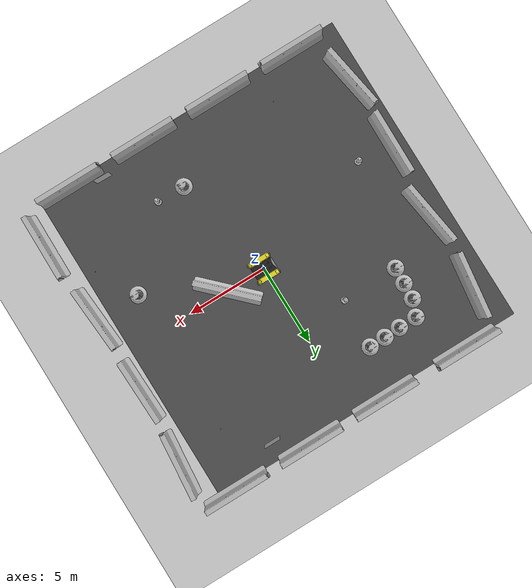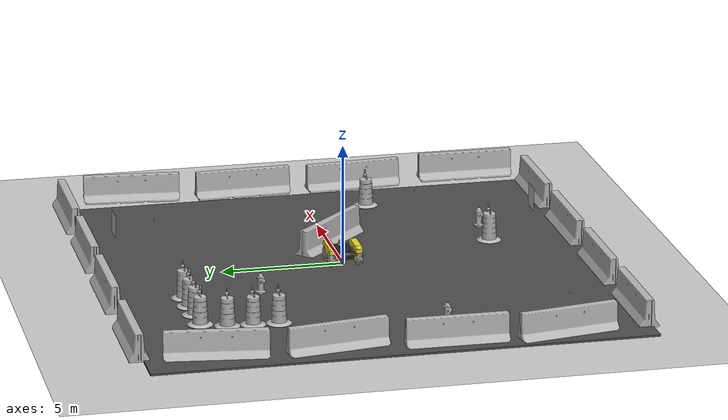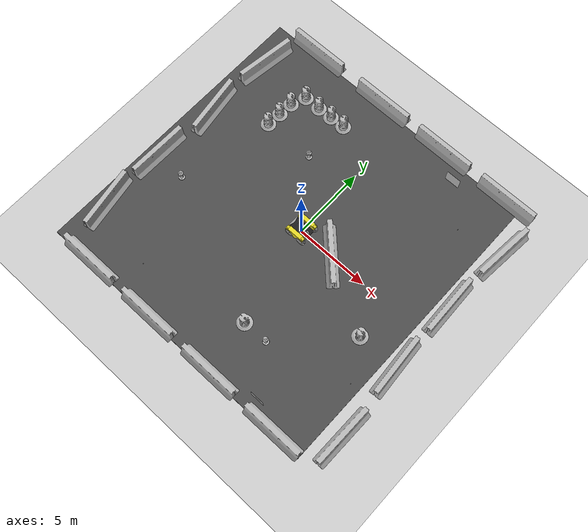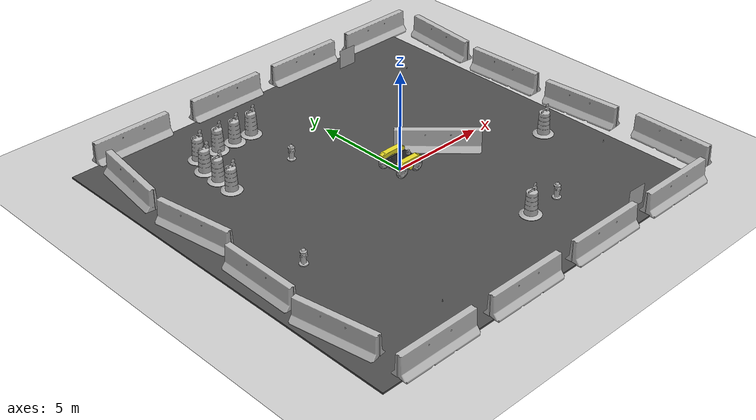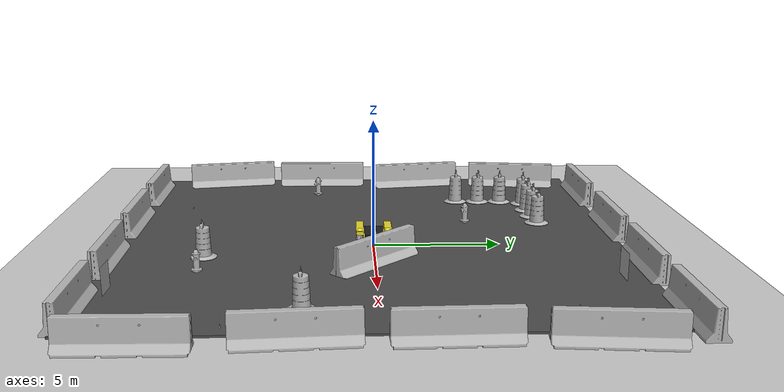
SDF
<sdf version="1.6">
 <world name="default">
  <light name="sun" type="directional">
   <pose>0 0 10 0 -0 0</pose>
   <diffuse>0.8 0.8 0.8 1</diffuse>
   <specular>0.2 0.2 0.2 1</specular>
   <attenuation>
    <range>1000</range>
    <constant>0.9</constant>
    <linear>0.01</linear>
    <quadratic>0.001</quadratic>
   </attenuation>
   <direction>-0.5 0.1 -0.9</direction>
  </light>
  <model name="ground_plane">
   <static>1</static>
   <link name="link">
    <collision name="collision">
     <geometry><plane><normal>0 0 1</normal><size>100 100</size></plane></geometry>
     <surface><friction><ode><mu>100</mu><mu2>50</mu2></ode></friction></surface>
    </collision>
    <visual name="visual">
     <cast_shadows>0</cast_shadows>
     <geometry><plane><normal>0 0 1</normal><size>100 100</size></plane></geometry>
     <material>
      <script><uri>file://media/materials/scripts/gazebo.material</uri><name>Gazebo/Grey</name></script>
     </material>
    </visual>
    <velocity_decay><linear>0</linear><angular>0</angular></velocity_decay>
   </link>
  </model>
  <physics name="default_physics" default="0" type="ode">
   <max_step_size>0.01</max_step_size>
   <real_time_factor>1</real_time_factor>
   <real_time_update_rate>100</real_time_update_rate>
  </physics>
  <scene><ambient>0.4 0.4 0.4 1</ambient><background>0.7 0.7 0.7 1</background><shadows>1</shadows></scene>
  <model name="jersey_barrier">
   <static>1</static>
   <link name="link">
    <visual name="visual">
     <geometry>
      <mesh><uri>model://jersey_barrier/meshes/jersey_barrier.dae</uri><scale>1 1 1</scale></mesh>
     </geometry>
    </visual>
    <collision name="upright">
     <pose>0 0 0.5715 0 -0 0</pose>
     <geometry><box><size>4.06542 0.3063 1.143</size></box></geometry>
    </collision>
    <collision name="base">
     <pose>0 0 0.032258 0 -0 0</pose>
     <geometry><box><size>4.06542 0.8107 0.064516</size></box></geometry>
    </collision>
    <collision name="base2">
     <pose>0 0 0.1 0 -0 0</pose>
     <geometry><box><size>4.06542 0.65 0.1</size></box></geometry>
    </collision>
    <collision name="base3">
     <pose>0 0 0.2 0 -0 0</pose>
     <geometry><box><size>4.06542 0.5 0.1</size></box></geometry>
    </collision>
    <collision name="left-angle">
     <pose>0 -0.224 0.2401 0.9 -0 0</pose>
     <geometry><box><size>4.06542 0.5 0.064516</size></box></geometry>
    </collision>
    <collision name="right-angle">
     <pose>0 0.224 0.2401 -0.9 0 0</pose>
     <geometry><box><size>4.06542 0.5 0.064516</size></box></geometry>
    </collision>
    <velocity_decay><linear>0</linear><angular>0</angular></velocity_decay>
   </link>
   <pose>-8 -10 0 0 -0 0</pose>
  </model>
  <model name="jersey_barrier_0">
   <static>1</static>
   <link name="link">
    <visual name="visual">
     <geometry>
      <mesh><uri>model://jersey_barrier/meshes/jersey_barrier.dae</uri><scale>1 1 1</scale></mesh>
     </geometry>
    </visual>
    <collision name="upright">
     <pose>0 0 0.5715 0 -0 0</pose>
     <geometry><box><size>4.06542 0.3063 1.143</size></box></geometry>
    </collision>
    <collision name="base">
     <pose>0 0 0.032258 0 -0 0</pose>
     <geometry><box><size>4.06542 0.8107 0.064516</size></box></geometry>
    </collision>
    <collision name="base2">
     <pose>0 0 0.1 0 -0 0</pose>
     <geometry><box><size>4.06542 0.65 0.1</size></box></geometry>
    </collision>
    <collision name="base3">
     <pose>0 0 0.2 0 -0 0</pose>
     <geometry><box><size>4.06542 0.5 0.1</size></box></geometry>
    </collision>
    <collision name="left-angle">
     <pose>0 -0.224 0.2401 0.9 -0 0</pose>
     <geometry><box><size>4.06542 0.5 0.064516</size></box></geometry>
    </collision>
    <collision name="right-angle">
     <pose>0 0.224 0.2401 -0.9 0 0</pose>
     <geometry><box><size>4.06542 0.5 0.064516</size></box></geometry>
    </collision>
    <velocity_decay><linear>0</linear><angular>0</angular></velocity_decay>
   </link>
   <pose>-3 -10 0 0 -0 0</pose>
  </model>
  <model name="jersey_barrier_1">
   <static>1</static>
   <link name="link">
    <visual name="visual">
     <geometry>
      <mesh><uri>model://jersey_barrier/meshes/jersey_barrier.dae</uri><scale>1 1 1</scale></mesh>
     </geometry>
    </visual>
    <collision name="upright">
     <pose>0 0 0.5715 0 -0 0</pose>
     <geometry><box><size>4.06542 0.3063 1.143</size></box></geometry>
    </collision>
    <collision name="base">
     <pose>0 0 0.032258 0 -0 0</pose>
     <geometry><box><size>4.06542 0.8107 0.064516</size></box></geometry>
    </collision>
    <collision name="base2">
     <pose>0 0 0.1 0 -0 0</pose>
     <geometry><box><size>4.06542 0.65 0.1</size></box></geometry>
    </collision>
    <collision name="base3">
     <pose>0 0 0.2 0 -0 0</pose>
     <geometry><box><size>4.06542 0.5 0.1</size></box></geometry>
    </collision>
    <collision name="left-angle">
     <pose>0 -0.224 0.2401 0.9 -0 0</pose>
     <geometry><box><size>4.06542 0.5 0.064516</size></box></geometry>
    </collision>
    <collision name="right-angle">
     <pose>0 0.224 0.2401 -0.9 0 0</pose>
     <geometry><box><size>4.06542 0.5 0.064516</size></box></geometry>
    </collision>
    <velocity_decay><linear>0</linear><angular>0</angular></velocity_decay>
   </link>
   <pose>2 -10 0 0 -0 0</pose>
  </model>
  <model name="jersey_barrier_2">
   <static>1</static>
   <link name="link">
    <visual name="visual">
     <geometry>
      <mesh><uri>model://jersey_barrier/meshes/jersey_barrier.dae</uri><scale>1 1 1</scale></mesh>
     </geometry>
    </visual>
    <collision name="upright">
     <pose>0 0 0.5715 0 -0 0</pose>
     <geometry><box><size>4.06542 0.3063 1.143</size></box></geometry>
    </collision>
    <collision name="base">
     <pose>0 0 0.032258 0 -0 0</pose>
     <geometry><box><size>4.06542 0.8107 0.064516</size></box></geometry>
    </collision>
    <collision name="base2">
     <pose>0 0 0.1 0 -0 0</pose>
     <geometry><box><size>4.06542 0.65 0.1</size></box></geometry>
    </collision>
    <collision name="base3">
     <pose>0 0 0.2 0 -0 0</pose>
     <geometry><box><size>4.06542 0.5 0.1</size></box></geometry>
    </collision>
    <collision name="left-angle">
     <pose>0 -0.224 0.2401 0.9 -0 0</pose>
     <geometry><box><size>4.06542 0.5 0.064516</size></box></geometry>
    </collision>
    <collision name="right-angle">
     <pose>0 0.224 0.2401 -0.9 0 0</pose>
     <geometry><box><size>4.06542 0.5 0.064516</size></box></geometry>
    </collision>
    <velocity_decay><linear>0</linear><angular>0</angular></velocity_decay>
   </link>
   <pose>7 -10 0 0 -0 0</pose>
  </model>
  <model name="jersey_barrier_3">
   <static>1</static>
   <link name="link">
    <visual name="visual">
     <geometry>
      <mesh><uri>model://jersey_barrier/meshes/jersey_barrier.dae</uri><scale>1 1 1</scale></mesh>
     </geometry>
    </visual>
    <collision name="upright">
     <pose>0 0 0.5715 0 -0 0</pose>
     <geometry><box><size>4.06542 0.3063 1.143</size></box></geometry>
    </collision>
    <collision name="base">
     <pose>0 0 0.032258 0 -0 0</pose>
     <geometry><box><size>4.06542 0.8107 0.064516</size></box></geometry>
    </collision>
    <collision name="base2">
     <pose>0 0 0.1 0 -0 0</pose>
     <geometry><box><size>4.06542 0.65 0.1</size></box></geometry>
    </collision>
    <collision name="base3">
     <pose>0 0 0.2 0 -0 0</pose>
     <geometry><box><size>4.06542 0.5 0.1</size></box></geometry>
    </collision>
    <collision name="left-angle">
     <pose>0 -0.224 0.2401 0.9 -0 0</pose>
     <geometry><box><size>4.06542 0.5 0.064516</size></box></geometry>
    </collision>
    <collision name="right-angle">
     <pose>0 0.224 0.2401 -0.9 0 0</pose>
     <geometry><box><size>4.06542 0.5 0.064516</size></box></geometry>
    </collision>
    <velocity_decay><linear>0</linear><angular>0</angular></velocity_decay>
   </link>
   <pose>-7.50675 10 0 0 -0 0</pose>
  </model>
  <model name="jersey_barrier_4">
   <static>1</static>
   <link name="link">
    <visual name="visual">
     <geometry>
      <mesh><uri>model://jersey_barrier/meshes/jersey_barrier.dae</uri><scale>1 1 1</scale></mesh>
     </geometry>
    </visual>
    <collision name="upright">
     <pose>0 0 0.5715 0 -0 0</pose>
     <geometry><box><size>4.06542 0.3063 1.143</size></box></geometry>
    </collision>
    <collision name="base">
     <pose>0 0 0.032258 0 -0 0</pose>
     <geometry><box><size>4.06542 0.8107 0.064516</size></box></geometry>
    </collision>
    <collision name="base2">
     <pose>0 0 0.1 0 -0 0</pose>
     <geometry><box><size>4.06542 0.65 0.1</size></box></geometry>
    </collision>
    <collision name="base3">
     <pose>0 0 0.2 0 -0 0</pose>
     <geometry><box><size>4.06542 0.5 0.1</size></box></geometry>
    </collision>
    <collision name="left-angle">
     <pose>0 -0.224 0.2401 0.9 -0 0</pose>
     <geometry><box><size>4.06542 0.5 0.064516</size></box></geometry>
    </collision>
    <collision name="right-angle">
     <pose>0 0.224 0.2401 -0.9 0 0</pose>
     <geometry><box><size>4.06542 0.5 0.064516</size></box></geometry>
    </collision>
    <velocity_decay><linear>0</linear><angular>0</angular></velocity_decay>
   </link>
   <pose>-2 10 0 0 -0 0</pose>
  </model>
  <model name="jersey_barrier_5">
   <static>1</static>
   <link name="link">
    <visual name="visual">
     <geometry>
      <mesh><uri>model://jersey_barrier/meshes/jersey_barrier.dae</uri><scale>1 1 1</scale></mesh>
     </geometry>
    </visual>
    <collision name="upright">
     <pose>0 0 0.5715 0 -0 0</pose>
     <geometry><box><size>4.06542 0.3063 1.143</size></box></geometry>
    </collision>
    <collision name="base">
     <pose>0 0 0.032258 0 -0 0</pose>
     <geometry><box><size>4.06542 0.8107 0.064516</size></box></geometry>
    </collision>
    <collision name="base2">
     <pose>0 0 0.1 0 -0 0</pose>
     <geometry><box><size>4.06542 0.65 0.1</size></box></geometry>
    </collision>
    <collision name="base3">
     <pose>0 0 0.2 0 -0 0</pose>
     <geometry><box><size>4.06542 0.5 0.1</size></box></geometry>
    </collision>
    <collision name="left-angle">
     <pose>0 -0.224 0.2401 0.9 -0 0</pose>
     <geometry><box><size>4.06542 0.5 0.064516</size></box></geometry>
    </collision>
    <collision name="right-angle">
     <pose>0 0.224 0.2401 -0.9 0 0</pose>
     <geometry><box><size>4.06542 0.5 0.064516</size></box></geometry>
    </collision>
    <velocity_decay><linear>0</linear><angular>0</angular></velocity_decay>
   </link>
   <pose>3 10 0 0 -0 0</pose>
  </model>
  <model name="jersey_barrier_6">
   <static>1</static>
   <link name="link">
    <visual name="visual">
     <geometry>
      <mesh><uri>model://jersey_barrier/meshes/jersey_barrier.dae</uri><scale>1 1 1</scale></mesh>
     </geometry>
    </visual>
    <collision name="upright">
     <pose>0 0 0.5715 0 -0 0</pose>
     <geometry><box><size>4.06542 0.3063 1.143</size></box></geometry>
    </collision>
    <collision name="base">
     <pose>0 0 0.032258 0 -0 0</pose>
     <geometry><box><size>4.06542 0.8107 0.064516</size></box></geometry>
    </collision>
    <collision name="base2">
     <pose>0 0 0.1 0 -0 0</pose>
     <geometry><box><size>4.06542 0.65 0.1</size></box></geometry>
    </collision>
    <collision name="base3">
     <pose>0 0 0.2 0 -0 0</pose>
     <geometry><box><size>4.06542 0.5 0.1</size></box></geometry>
    </collision>
    <collision name="left-angle">
     <pose>0 -0.224 0.2401 0.9 -0 0</pose>
     <geometry><box><size>4.06542 0.5 0.064516</size></box></geometry>
    </collision>
    <collision name="right-angle">
     <pose>0 0.224 0.2401 -0.9 0 0</pose>
     <geometry><box><size>4.06542 0.5 0.064516</size></box></geometry>
    </collision>
    <velocity_decay><linear>0</linear><angular>0</angular></velocity_decay>
   </link>
   <pose>8 10 0 0 -0 0</pose>
  </model>
  <model name="jersey_barrier_7">
   <static>1</static>
   <link name="link">
    <visual name="visual">
     <geometry>
      <mesh><uri>model://jersey_barrier/meshes/jersey_barrier.dae</uri><scale>1 1 1</scale></mesh>
     </geometry>
    </visual>
    <collision name="upright">
     <pose>0 0 0.5715 0 -0 0</pose>
     <geometry><box><size>4.06542 0.3063 1.143</size></box></geometry>
    </collision>
    <collision name="base">
     <pose>0 0 0.032258 0 -0 0</pose>
     <geometry><box><size>4.06542 0.8107 0.064516</size></box></geometry>
    </collision>
    <collision name="base2">
     <pose>0 0 0.1 0 -0 0</pose>
     <geometry><box><size>4.06542 0.65 0.1</size></box></geometry>
    </collision>
    <collision name="base3">
     <pose>0 0 0.2 0 -0 0</pose>
     <geometry><box><size>4.06542 0.5 0.1</size></box></geometry>
    </collision>
    <collision name="left-angle">
     <pose>0 -0.224 0.2401 0.9 -0 0</pose>
     <geometry><box><size>4.06542 0.5 0.064516</size></box></geometry>
    </collision>
    <collision name="right-angle">
     <pose>0 0.224 0.2401 -0.9 0 0</pose>
     <geometry><box><size>4.06542 0.5 0.064516</size></box></geometry>
    </collision>
    <velocity_decay><linear>0</linear><angular>0</angular></velocity_decay>
   </link>
   <pose>9.74902 -2.57759 0 0 -0 1.64</pose>
  </model>
  <model name="jersey_barrier_8">
   <static>1</static>
   <link name="link">
    <visual name="visual">
     <geometry>
      <mesh><uri>model://jersey_barrier/meshes/jersey_barrier.dae</uri><scale>1 1 1</scale></mesh>
     </geometry>
    </visual>
    <collision name="upright">
     <pose>0 0 0.5715 0 -0 0</pose>
     <geometry><box><size>4.06542 0.3063 1.143</size></box></geometry>
    </collision>
    <collision name="base">
     <pose>0 0 0.032258 0 -0 0</pose>
     <geometry><box><size>4.06542 0.8107 0.064516</size></box></geometry>
    </collision>
    <collision name="base2">
     <pose>0 0 0.1 0 -0 0</pose>
     <geometry><box><size>4.06542 0.65 0.1</size></box></geometry>
    </collision>
    <collision name="base3">
     <pose>0 0 0.2 0 -0 0</pose>
     <geometry><box><size>4.06542 0.5 0.1</size></box></geometry>
    </collision>
    <collision name="left-angle">
     <pose>0 -0.224 0.2401 0.9 -0 0</pose>
     <geometry><box><size>4.06542 0.5 0.064516</size></box></geometry>
    </collision>
    <collision name="right-angle">
     <pose>0 0.224 0.2401 -0.9 0 0</pose>
     <geometry><box><size>4.06542 0.5 0.064516</size></box></geometry>
    </collision>
    <velocity_decay><linear>0</linear><angular>0</angular></velocity_decay>
   </link>
   <pose>9.70141 2.24369 0 0 -0 1.6</pose>
  </model>
  <model name="jersey_barrier_9">
   <static>1</static>
   <link name="link">
    <visual name="visual">
     <geometry>
      <mesh><uri>model://jersey_barrier/meshes/jersey_barrier.dae</uri><scale>1 1 1</scale></mesh>
     </geometry>
    </visual>
    <collision name="upright">
     <pose>0 0 0.5715 0 -0 0</pose>
     <geometry><box><size>4.06542 0.3063 1.143</size></box></geometry>
    </collision>
    <collision name="base">
     <pose>0 0 0.032258 0 -0 0</pose>
     <geometry><box><size>4.06542 0.8107 0.064516</size></box></geometry>
    </collision>
    <collision name="base2">
     <pose>0 0 0.1 0 -0 0</pose>
     <geometry><box><size>4.06542 0.65 0.1</size></box></geometry>
    </collision>
    <collision name="base3">
     <pose>0 0 0.2 0 -0 0</pose>
     <geometry><box><size>4.06542 0.5 0.1</size></box></geometry>
    </collision>
    <collision name="left-angle">
     <pose>0 -0.224 0.2401 0.9 -0 0</pose>
     <geometry><box><size>4.06542 0.5 0.064516</size></box></geometry>
    </collision>
    <collision name="right-angle">
     <pose>0 0.224 0.2401 -0.9 0 0</pose>
     <geometry><box><size>4.06542 0.5 0.064516</size></box></geometry>
    </collision>
    <velocity_decay><linear>0</linear><angular>0</angular></velocity_decay>
   </link>
   <pose>-10.0607 -6.69856 0 0 0 -1.4</pose>
  </model>
  <model name="jersey_barrier_10">
   <static>1</static>
   <link name="link">
    <visual name="visual">
     <geometry>
      <mesh><uri>model://jersey_barrier/meshes/jersey_barrier.dae</uri><scale>1 1 1</scale></mesh>
     </geometry>
    </visual>
    <collision name="upright">
     <pose>0 0 0.5715 0 -0 0</pose>
     <geometry><box><size>4.06542 0.3063 1.143</size></box></geometry>
    </collision>
    <collision name="base">
     <pose>0 0 0.032258 0 -0 0</pose>
     <geometry><box><size>4.06542 0.8107 0.064516</size></box></geometry>
    </collision>
    <collision name="base2">
     <pose>0 0 0.1 0 -0 0</pose>
     <geometry><box><size>4.06542 0.65 0.1</size></box></geometry>
    </collision>
    <collision name="base3">
     <pose>0 0 0.2 0 -0 0</pose>
     <geometry><box><size>4.06542 0.5 0.1</size></box></geometry>
    </collision>
    <collision name="left-angle">
     <pose>0 -0.224 0.2401 0.9 -0 0</pose>
     <geometry><box><size>4.06542 0.5 0.064516</size></box></geometry>
    </collision>
    <collision name="right-angle">
     <pose>0 0.224 0.2401 -0.9 0 0</pose>
     <geometry><box><size>4.06542 0.5 0.064516</size></box></geometry>
    </collision>
    <velocity_decay><linear>0</linear><angular>0</angular></velocity_decay>
   </link>
   <pose>-10.0774 -2.27159 0 0 -0 1.56</pose>
  </model>
  <model name="jersey_barrier_11">
   <static>1</static>
   <link name="link">
    <visual name="visual">
     <geometry>
      <mesh><uri>model://jersey_barrier/meshes/jersey_barrier.dae</uri><scale>1 1 1</scale></mesh>
     </geometry>
    </visual>
    <collision name="upright">
     <pose>0 0 0.5715 0 -0 0</pose>
     <geometry><box><size>4.06542 0.3063 1.143</size></box></geometry>
    </collision>
    <collision name="base">
     <pose>0 0 0.032258 0 -0 0</pose>
     <geometry><box><size>4.06542 0.8107 0.064516</size></box></geometry>
    </collision>
    <collision name="base2">
     <pose>0 0 0.1 0 -0 0</pose>
     <geometry><box><size>4.06542 0.65 0.1</size></box></geometry>
    </collision>
    <collision name="base3">
     <pose>0 0 0.2 0 -0 0</pose>
     <geometry><box><size>4.06542 0.5 0.1</size></box></geometry>
    </collision>
    <collision name="left-angle">
     <pose>0 -0.224 0.2401 0.9 -0 0</pose>
     <geometry><box><size>4.06542 0.5 0.064516</size></box></geometry>
    </collision>
    <collision name="right-angle">
     <pose>0 0.224 0.2401 -0.9 0 0</pose>
     <geometry><box><size>4.06542 0.5 0.064516</size></box></geometry>
    </collision>
    <velocity_decay><linear>0</linear><angular>0</angular></velocity_decay>
   </link>
   <pose>-9.77013 2.34791 0 0 -0 1.72</pose>
  </model>
  <model name="jersey_barrier_12">
   <static>1</static>
   <link name="link">
    <visual name="visual">
     <geometry>
      <mesh><uri>model://jersey_barrier/meshes/jersey_barrier.dae</uri><scale>1 1 1</scale></mesh>
     </geometry>
    </visual>
    <collision name="upright">
     <pose>0 0 0.5715 0 -0 0</pose>
     <geometry><box><size>4.06542 0.3063 1.143</size></box></geometry>
    </collision>
    <collision name="base">
     <pose>0 0 0.032258 0 -0 0</pose>
     <geometry><box><size>4.06542 0.8107 0.064516</size></box></geometry>
    </collision>
    <collision name="base2">
     <pose>0 0 0.1 0 -0 0</pose>
     <geometry><box><size>4.06542 0.65 0.1</size></box></geometry>
    </collision>
    <collision name="base3">
     <pose>0 0 0.2 0 -0 0</pose>
     <geometry><box><size>4.06542 0.5 0.1</size></box></geometry>
    </collision>
    <collision name="left-angle">
     <pose>0 -0.224 0.2401 0.9 -0 0</pose>
     <geometry><box><size>4.06542 0.5 0.064516</size></box></geometry>
    </collision>
    <collision name="right-angle">
     <pose>0 0.224 0.2401 -0.9 0 0</pose>
     <geometry><box><size>4.06542 0.5 0.064516</size></box></geometry>
    </collision>
    <velocity_decay><linear>0</linear><angular>0</angular></velocity_decay>
   </link>
   <pose>10.0879 -7.62159 0 0 -0 1.56</pose>
  </model>
  <model name="jersey_barrier_13">
   <static>1</static>
   <link name="link">
    <visual name="visual">
     <geometry>
      <mesh><uri>model://jersey_barrier/meshes/jersey_barrier.dae</uri><scale>1 1 1</scale></mesh>
     </geometry>
    </visual>
    <collision name="upright">
     <pose>0 0 0.5715 0 -0 0</pose>
     <geometry><box><size>4.06542 0.3063 1.143</size></box></geometry>
    </collision>
    <collision name="base">
     <pose>0 0 0.032258 0 -0 0</pose>
     <geometry><box><size>4.06542 0.8107 0.064516</size></box></geometry>
    </collision>
    <collision name="base2">
     <pose>0 0 0.1 0 -0 0</pose>
     <geometry><box><size>4.06542 0.65 0.1</size></box></geometry>
    </collision>
    <collision name="base3">
     <pose>0 0 0.2 0 -0 0</pose>
     <geometry><box><size>4.06542 0.5 0.1</size></box></geometry>
    </collision>
    <collision name="left-angle">
     <pose>0 -0.224 0.2401 0.9 -0 0</pose>
     <geometry><box><size>4.06542 0.5 0.064516</size></box></geometry>
    </collision>
    <collision name="right-angle">
     <pose>0 0.224 0.2401 -0.9 0 0</pose>
     <geometry><box><size>4.06542 0.5 0.064516</size></box></geometry>
    </collision>
    <velocity_decay><linear>0</linear><angular>0</angular></velocity_decay>
   </link>
   <pose>10 7 0 0 -0 1.48</pose>
  </model>
  <model name="jersey_barrier_14">
   <static>1</static>
   <link name="link">
    <visual name="visual">
     <geometry>
      <mesh><uri>model://jersey_barrier/meshes/jersey_barrier.dae</uri><scale>1 1 1</scale></mesh>
     </geometry>
    </visual>
    <collision name="upright">
     <pose>0 0 0.5715 0 -0 0</pose>
     <geometry><box><size>4.06542 0.3063 1.143</size></box></geometry>
    </collision>
    <collision name="base">
     <pose>0 0 0.032258 0 -0 0</pose>
     <geometry><box><size>4.06542 0.8107 0.064516</size></box></geometry>
    </collision>
    <collision name="base2">
     <pose>0 0 0.1 0 -0 0</pose>
     <geometry><box><size>4.06542 0.65 0.1</size></box></geometry>
    </collision>
    <collision name="base3">
     <pose>0 0 0.2 0 -0 0</pose>
     <geometry><box><size>4.06542 0.5 0.1</size></box></geometry>
    </collision>
    <collision name="left-angle">
     <pose>0 -0.224 0.2401 0.9 -0 0</pose>
     <geometry><box><size>4.06542 0.5 0.064516</size></box></geometry>
    </collision>
    <collision name="right-angle">
     <pose>0 0.224 0.2401 -0.9 0 0</pose>
     <geometry><box><size>4.06542 0.5 0.064516</size></box></geometry>
    </collision>
    <velocity_decay><linear>0</linear><angular>0</angular></velocity_decay>
   </link>
   <pose>-9.64482 7.05946 0 0 -0 1.44</pose>
  </model>
  <model name="fire_hydrant">
   <static>1</static>
   <link name="link">
    <collision name="collision">
     <geometry><mesh><uri>model://fire_hydrant/meshes/fire_hydrant.dae</uri><scale>1 1 1</scale></mesh></geometry>
    </collision>
    <visual name="visual">
     <geometry><mesh><uri>model://fire_hydrant/meshes/fire_hydrant.dae</uri><scale>1 1 1</scale></mesh></geometry>
    </visual>
    <velocity_decay><linear>0</linear><angular>0</angular></velocity_decay>
   </link>
   <pose>3.18024 -6.51118 0 0 -0 0</pose>
  </model>
  <model name="fire_hydrant_0">
   <static>1</static>
   <link name="link">
    <collision name="collision">
     <geometry><mesh><uri>model://fire_hydrant/meshes/fire_hydrant.dae</uri><scale>1 1 1</scale></mesh></geometry>
    </collision>
    <visual name="visual">
     <geometry><mesh><uri>model://fire_hydrant/meshes/fire_hydrant.dae</uri><scale>1 1 1</scale></mesh></geometry>
    </visual>
    <velocity_decay><linear>0</linear><angular>0</angular></velocity_decay>
   </link>
   <pose>-3 4 0 0 -0 0</pose>
  </model>
  <model name="fire_hydrant_1">
   <static>1</static>
   <link name="link">
    <collision name="collision">
     <geometry><mesh><uri>model://fire_hydrant/meshes/fire_hydrant.dae</uri><scale>1 1 1</scale></mesh></geometry>
    </collision>
    <visual name="visual">
     <geometry><mesh><uri>model://fire_hydrant/meshes/fire_hydrant.dae</uri><scale>1 1 1</scale></mesh></geometry>
    </visual>
    <velocity_decay><linear>0</linear><angular>0</angular></velocity_decay>
   </link>
   <pose>-7.90686 -2.41363 0 0 -0 0</pose>
  </model>
  <model name="jersey_barrier_15">
   <static>1</static>
   <link name="link">
    <visual name="visual">
     <geometry>
      <mesh><uri>model://jersey_barrier/meshes/jersey_barrier.dae</uri><scale>1 1 1</scale></mesh>
     </geometry>
    </visual>
    <collision name="upright">
     <pose>0 0 0.5715 0 -0 0</pose>
     <geometry><box><size>4.06542 0.3063 1.143</size></box></geometry>
    </collision>
    <collision name="base">
     <pose>0 0 0.032258 0 -0 0</pose>
     <geometry><box><size>4.06542 0.8107 0.064516</size></box></geometry>
    </collision>
    <collision name="base2">
     <pose>0 0 0.1 0 -0 0</pose>
     <geometry><box><size>4.06542 0.65 0.1</size></box></geometry>
    </collision>
    <collision name="base3">
     <pose>0 0 0.2 0 -0 0</pose>
     <geometry><box><size>4.06542 0.5 0.1</size></box></geometry>
    </collision>
    <collision name="left-angle">
     <pose>0 -0.224 0.2401 0.9 -0 0</pose>
     <geometry><box><size>4.06542 0.5 0.064516</size></box></geometry>
    </collision>
    <collision name="right-angle">
     <pose>0 0.224 0.2401 -0.9 0 0</pose>
     <geometry><box><size>4.06542 0.5 0.064516</size></box></geometry>
    </collision>
    <velocity_decay><linear>0</linear><angular>0</angular></velocity_decay>
   </link>
   <pose>2.45495 0 0 0 -0 2.36</pose>
  </model>
  <model name="Construction Cone">
   <link name="link">
    <collision name="collision">
     <geometry>
      <mesh><scale>1 1 1</scale><uri>model://construction_cone/meshes/construction_cone.dae</uri></mesh>
     </geometry>
    </collision>
    <visual name="visual">
     <geometry>
      <mesh><scale>1 1 1</scale><uri>model://construction_cone/meshes/construction_cone.dae</uri></mesh>
     </geometry>
    </visual>
    <velocity_decay><linear>0</linear><angular>0</angular></velocity_decay>
    <inertial>
     <inertia><ixx>1</ixx><ixy>0</ixy><ixz>0</ixz><iyy>1</iyy><iyz>0</iyz><izz>1</izz></inertia>
     <mass>1</mass>
    </inertial>
   </link>
   <pose>-5.59121 -8 0.049102 3e-06 -1e-05 3e-06</pose>
   <static>0</static>
  </model>
  <model name="Construction Barrel">
   <link name="link">
    <inertial>
     <pose>0 0 0.4 0 -0 0</pose>
     <mass>500</mass>
     <inertia><ixx>51.2096</ixx><iyy>51.2096</iyy><izz>25</izz><ixy>0</ixy><ixz>0</ixz><iyz>0</iyz></inertia>
    </inertial>
    <collision name="collision">
     <geometry>
      <mesh><uri>model://construction_barrel/meshes/construction_barrel.dae</uri><scale>1 1 1</scale></mesh>
     </geometry>
    </collision>
    <visual name="visual">
     <geometry>
      <mesh><uri>model://construction_barrel/meshes/construction_barrel.dae</uri><scale>1 1 1</scale></mesh>
     </geometry>
    </visual>
    <velocity_decay><linear>0</linear><angular>0</angular></velocity_decay>
   </link>
   <pose>7.00009 -2.54626 0.049899 -0.000198 -0.00038 0.000271</pose>
   <static>0</static>
  </model>
  <model name="Construction Cone_0">
   <link name="link">
    <collision name="collision">
     <geometry>
      <mesh><scale>1 1 1</scale><uri>model://construction_cone/meshes/construction_cone.dae</uri></mesh>
     </geometry>
    </collision>
    <visual name="visual">
     <geometry>
      <mesh><scale>1 1 1</scale><uri>model://construction_cone/meshes/construction_cone.dae</uri></mesh>
     </geometry>
    </visual>
    <velocity_decay><linear>0</linear><angular>0</angular></velocity_decay>
    <inertial>
     <inertia><ixx>1</ixx><ixy>0</ixy><ixz>0</ixz><iyy>1</iyy><iyz>0</iyz><izz>1</izz></inertia>
     <mass>1</mass>
    </inertial>
   </link>
   <pose>6.99685 6.55732 0.04902 1e-06 0 -0.00701</pose>
   <static>0</static>
  </model>
  <model name="Construction Barrel_0">
   <link name="link">
    <inertial>
     <pose>0 0 0.4 0 -0 0</pose>
     <mass>500</mass>
     <inertia><ixx>51.2096</ixx><iyy>51.2096</iyy><izz>25</izz><ixy>0</ixy><ixz>0</ixz><iyz>0</iyz></inertia>
    </inertial>
    <collision name="collision">
     <geometry>
      <mesh><uri>model://construction_barrel/meshes/construction_barrel.dae</uri><scale>1 1 1</scale></mesh>
     </geometry>
    </collision>
    <visual name="visual">
     <geometry>
      <mesh><uri>model://construction_barrel/meshes/construction_barrel.dae</uri><scale>1 1 1</scale></mesh>
     </geometry>
    </visual>
    <velocity_decay><linear>0</linear><angular>0</angular></velocity_decay>
   </link>
   <pose>1.45181 -6.51119 0.04989 0.000454 -1.3e-05 -9.3e-05</pose>
   <static>0</static>
  </model>
  <model name="asphalt_plane">
   <static>1</static>
   <link name="link">
    <collision name="collision"><geometry><box><size>20 20 0.1</size></box></geometry></collision>
    <visual name="visual">
     <cast_shadows>0</cast_shadows>
     <geometry><box><size>20 20 0.1</size></box></geometry>
     <material>
      <script>
       <uri>model://asphalt_plane/materials/scripts</uri>
       <uri>model://asphalt_plane/materials/textures</uri>
       <name>vrc/asphalt</name>
      </script>
     </material>
    </visual>
    <velocity_decay><linear>0</linear><angular>0</angular></velocity_decay>
   </link>
   <pose>-0.9489 -0.162864 0 0 -0 0</pose>
  </model>
  <model name="Construction Barrel_1">
   <link name="link">
    <inertial>
     <pose>0 0 0.4 0 -0 0</pose>
     <mass>500</mass>
     <inertia><ixx>51.2096</ixx><iyy>51.2096</iyy><izz>25</izz><ixy>0</ixy><ixz>0</ixz><iyz>0</iyz></inertia>
    </inertial>
    <collision name="collision">
     <geometry>
      <mesh><uri>model://construction_barrel/meshes/construction_barrel.dae</uri><scale>1 1 1</scale></mesh>
     </geometry>
    </collision>
    <visual name="visual">
     <geometry>
      <mesh><uri>model://construction_barrel/meshes/construction_barrel.dae</uri><scale>1 1 1</scale></mesh>
     </geometry>
    </visual>
    <velocity_decay><linear>0</linear><angular>0</angular></velocity_decay>
   </link>
   <pose>-6.50462 3.98284 0.04989 -0.000107 -0.000437 -0.009525</pose>
   <static>0</static>
  </model>
  <model name="Construction Barrel_2">
   <link name="link">
    <inertial>
     <pose>0 0 0.4 0 -0 0</pose>
     <mass>500</mass>
     <inertia><ixx>51.2096</ixx><iyy>51.2096</iyy><izz>25</izz><ixy>0</ixy><ixz>0</ixz><iyz>0</iyz></inertia>
    </inertial>
    <collision name="collision">
     <geometry>
      <mesh><uri>model://construction_barrel/meshes/construction_barrel.dae</uri><scale>1 1 1</scale></mesh>
     </geometry>
    </collision>
    <visual name="visual">
     <geometry>
      <mesh><uri>model://construction_barrel/meshes/construction_barrel.dae</uri><scale>1 1 1</scale></mesh>
     </geometry>
    </visual>
    <velocity_decay><linear>0</linear><angular>0</angular></velocity_decay>
   </link>
   <pose>-6.45061 4.99649 0.049875 0.000491 -1e-06 0.06488</pose>
   <static>0</static>
  </model>
  <model name="Construction Barrel_3">
   <link name="link">
    <inertial>
     <pose>0 0 0.4 0 -0 0</pose>
     <mass>500</mass>
     <inertia><ixx>51.2096</ixx><iyy>51.2096</iyy><izz>25</izz><ixy>0</ixy><ixz>0</ixz><iyz>0</iyz></inertia>
    </inertial>
    <collision name="collision">
     <geometry>
      <mesh><uri>model://construction_barrel/meshes/construction_barrel.dae</uri><scale>1 1 1</scale></mesh>
     </geometry>
    </collision>
    <visual name="visual">
     <geometry>
      <mesh><uri>model://construction_barrel/meshes/construction_barrel.dae</uri><scale>1 1 1</scale></mesh>
     </geometry>
    </visual>
    <velocity_decay><linear>0</linear><angular>0</angular></velocity_decay>
   </link>
   <pose>-6.40169 6.01122 0.049928 0.000333 5.5e-05 -0.120756</pose>
   <static>0</static>
  </model>
  <model name="Construction Barrel_4">
   <link name="link">
    <inertial>
     <pose>0 0 0.4 0 -0 0</pose>
     <mass>500</mass>
     <inertia><ixx>51.2096</ixx><iyy>51.2096</iyy><izz>25</izz><ixy>0</ixy><ixz>0</ixz><iyz>0</iyz></inertia>
    </inertial>
    <collision name="collision">
     <geometry>
      <mesh><uri>model://construction_barrel/meshes/construction_barrel.dae</uri><scale>1 1 1</scale></mesh>
     </geometry>
    </collision>
    <visual name="visual">
     <geometry>
      <mesh><uri>model://construction_barrel/meshes/construction_barrel.dae</uri><scale>1 1 1</scale></mesh>
     </geometry>
    </visual>
    <velocity_decay><linear>0</linear><angular>0</angular></velocity_decay>
   </link>
   <pose>-6.00617 7.00902 0.049904 -8.8e-05 -0.000399 -0.049519</pose>
   <static>0</static>
  </model>
  <model name="Construction Barrel_5">
   <link name="link">
    <inertial>
     <pose>0 0 0.4 0 -0 0</pose>
     <mass>500</mass>
     <inertia><ixx>51.2096</ixx><iyy>51.2096</iyy><izz>25</izz><ixy>0</ixy><ixz>0</ixz><iyz>0</iyz></inertia>
    </inertial>
    <collision name="collision">
     <geometry>
      <mesh><uri>model://construction_barrel/meshes/construction_barrel.dae</uri><scale>1 1 1</scale></mesh>
     </geometry>
    </collision>
    <visual name="visual">
     <geometry>
      <mesh><uri>model://construction_barrel/meshes/construction_barrel.dae</uri><scale>1 1 1</scale></mesh>
     </geometry>
    </visual>
    <velocity_decay><linear>0</linear><angular>0</angular></velocity_decay>
   </link>
   <pose>-4.8759 7.00773 0.049871 0.000428 0.000236 0.146762</pose>
   <static>0</static>
  </model>
  <model name="Construction Barrel_6">
   <link name="link">
    <inertial>
     <pose>0 0 0.4 0 -0 0</pose>
     <mass>500</mass>
     <inertia><ixx>51.2096</ixx><iyy>51.2096</iyy><izz>25</izz><ixy>0</ixy><ixz>0</ixz><iyz>0</iyz></inertia>
    </inertial>
    <collision name="collision">
     <geometry>
      <mesh><uri>model://construction_barrel/meshes/construction_barrel.dae</uri><scale>1 1 1</scale></mesh>
     </geometry>
    </collision>
    <visual name="visual">
     <geometry>
      <mesh><uri>model://construction_barrel/meshes/construction_barrel.dae</uri><scale>1 1 1</scale></mesh>
     </geometry>
    </visual>
    <velocity_decay><linear>0</linear><angular>0</angular></velocity_decay>
   </link>
   <pose>-3.86102 7.04852 0.049853 -0.000161 -0.000469 0.032517</pose>
   <static>0</static>
  </model>
  <model name="Construction Barrel_7">
   <link name="link">
    <inertial>
     <pose>0 0 0.4 0 -0 0</pose>
     <mass>500</mass>
     <inertia><ixx>51.2096</ixx><iyy>51.2096</iyy><izz>25</izz><ixy>0</ixy><ixz>0</ixz><iyz>0</iyz></inertia>
    </inertial>
    <collision name="collision">
     <geometry>
      <mesh><uri>model://construction_barrel/meshes/construction_barrel.dae</uri><scale>1 1 1</scale></mesh>
     </geometry>
    </collision>
    <visual name="visual">
     <geometry>
      <mesh><uri>model://construction_barrel/meshes/construction_barrel.dae</uri><scale>1 1 1</scale></mesh>
     </geometry>
    </visual>
    <velocity_decay><linear>0</linear><angular>0</angular></velocity_decay>
   </link>
   <pose>-2.84387 7.07543 0.049906 -8e-05 -0.000395 0.070619</pose>
   <static>0</static>
  </model>
  <model name="Construction Cone_1">
   <link name="link">
    <collision name="collision">
     <geometry>
      <mesh><scale>1 1 1</scale><uri>model://construction_cone/meshes/construction_cone.dae</uri></mesh>
     </geometry>
    </collision>
    <visual name="visual">
     <geometry>
      <mesh><scale>1 1 1</scale><uri>model://construction_cone/meshes/construction_cone.dae</uri></mesh>
     </geometry>
    </visual>
    <velocity_decay><linear>0</linear><angular>0</angular></velocity_decay>
    <inertial>
     <inertia><ixx>1</ixx><ixy>0</ixy><ixz>0</ixz><iyy>1</iyy><iyz>0</iyz><izz>1</izz></inertia>
     <mass>1</mass>
    </inertial>
   </link>
   <pose>8.42887 -5 0.049102 3e-06 -1e-05 3e-06</pose>
   <static>0</static>
  </model>
  <gravity>0 0 -9.8</gravity>
  <magnetic_field>6e-06 2.3e-05 -4.2e-05</magnetic_field>
  <atmosphere type="adiabatic"/>
  <spherical_coordinates>
   <surface_model>EARTH_WGS84</surface_model>
   <latitude_deg>0</latitude_deg>
   <longitude_deg>0</longitude_deg>
   <elevation>0</elevation>
   <heading_deg>0</heading_deg>
  </spherical_coordinates>
  <model name="warthog">
   <link name="base_link">
    <inertial>
     <pose>0 0 0.025 0 -0 0</pose>
     <mass>100</mass>
     <inertia>
      <ixx>4.83334</ixx>
      <ixy>0</ixy>
      <ixz>-3.7218e-06</ixz>
      <iyy>15.9375</iyy>
      <iyz>0</iyz>
      <izz>15.9375</izz>
     </inertia>
    </inertial>
    <collision name="base_link_fixed_joint_lump__chassis_link_collision">
     <pose>0 0 0.025 0 -0 0</pose>
     <geometry>
      <mesh>
       <scale>1 1 1</scale>
       <uri>/home/aluno/warthog_ws/src/warthog/warthog_description/meshes/chassis-collision.stl</uri>
      </mesh>
     </geometry>
    </collision>
    <collision name="base_link_fixed_joint_lump__camera_link_collision_1">
     <pose>0.5 0 0.44718 0 -0 0</pose>
     <geometry><box><size>0.1 0.1 0.1</size></box></geometry>
    </collision>
    <visual name="base_link_fixed_joint_lump__chassis_link_visual">
     <pose>0 0 0.025 0 -0 0</pose>
     <geometry>
      <mesh>
       <scale>1 1 1</scale>
       <uri>/home/aluno/warthog_ws/src/warthog/warthog_description/meshes/chassis.stl</uri>
      </mesh>
     </geometry>
     <material>
      <script><name>Gazebo/Black</name><uri>file://media/materials/scripts/gazebo.material</uri></script>
     </material>
    </visual>
    <visual name="base_link_fixed_joint_lump__chassis_link_visual_1">
     <pose>0 0 0.025 0 -0 0</pose>
     <geometry>
      <mesh>
       <scale>1 1 1</scale>
       <uri>/home/aluno/warthog_ws/src/warthog/warthog_description/meshes/e-stop.stl</uri>
      </mesh>
     </geometry>
     <material>
      <script><name>Gazebo/Black</name><uri>file://media/materials/scripts/gazebo.material</uri></script>
     </material>
    </visual>
    <visual name="base_link_fixed_joint_lump__diff_link_visual_2">
     <pose>-0.5826 0 0.27479 0 -0 0</pose>
     <geometry>
      <mesh>
       <scale>1 1 1</scale>
       <uri>/home/aluno/warthog_ws/src/warthog/warthog_description/meshes/diff-link.stl</uri>
      </mesh>
     </geometry>
     <material>
      <script><name>Gazebo/Grey</name><uri>file://media/materials/scripts/gazebo.material</uri></script>
     </material>
    </visual>
    <visual name="base_link_fixed_joint_lump__diff_link_visual_3">
     <pose>-0.5826 0 0.27479 0 -0 0</pose>
     <geometry>
      <mesh>
       <scale>1 1 1</scale>
       <uri>/home/aluno/warthog_ws/src/warthog/warthog_description/meshes/susp-link.stl</uri>
      </mesh>
     </geometry>
     <material>
      <script><name>Gazebo/Grey</name><uri>file://media/materials/scripts/gazebo.material</uri></script>
     </material>
    </visual>
    <visual name="base_link_fixed_joint_lump__diff_link_visual_4">
     <pose>-0.5826 0 0.27479 0 -0 0</pose>
     <geometry>
      <mesh>
       <scale>1 1 1</scale>
       <uri>/home/aluno/warthog_ws/src/warthog/warthog_description/meshes/susp-link.stl</uri>
      </mesh>
     </geometry>
     <material>
      <script><name>Gazebo/Grey</name><uri>file://media/materials/scripts/gazebo.material</uri></script>
     </material>
    </visual>
    <visual name="base_link_fixed_joint_lump__camera_link_visual_5">
     <pose>0.5 0 0.44718 0 -0 0</pose>
     <geometry><box><size>0.1 0.1 0.1</size></box></geometry>
     <material><script><uri>__default__</uri><name>__default__</name></script></material>
    </visual>
    <visual name="base_link_fixed_joint_lump__laser_link_visual_6">
     <pose>0.5 0 0.34718 0 -0 0</pose>
     <geometry><cylinder><length>0.1</length><radius>0.1</radius></cylinder></geometry>
     <material><script><uri>__default__</uri><name>__default__</name></script></material>
    </visual>
    <sensor name="camera1" type="camera">
     <update_rate>30</update_rate>
     <camera name="head">
      <horizontal_fov>1.39626</horizontal_fov>
      <image><width>800</width><height>800</height><format>R8G8B8</format></image>
      <clip><near>0.02</near><far>300</far></clip>
      <noise><type>gaussian</type><mean>0</mean><stddev>0.007</stddev></noise>
     </camera>
     <plugin name="camera_controller" filename="libgazebo_ros_camera.so">
      <alwaysOn>true</alwaysOn>
      <updateRate>0.0</updateRate>
      <cameraName>warthog/camera1</cameraName>
      <imageTopicName>image_raw</imageTopicName>
      <cameraInfoTopicName>camera_info</cameraInfoTopicName>
      <frameName>camera_link</frameName>
      <hackBaseline>0.07</hackBaseline>
      <distortionK1>0.0</distortionK1>
      <distortionK2>0.0</distortionK2>
      <distortionK3>0.0</distortionK3>
      <distortionT1>0.0</distortionT1>
      <distortionT2>0.0</distortionT2>
      <robotNamespace>/</robotNamespace>
     </plugin>
     <pose>0.5 0 0.44718 0 -0 0</pose>
    </sensor>
    <gravity>0</gravity>
    <sensor name="laser" type="ray">
     <visualize>1</visualize>
     <update_rate>50</update_rate>
     <ray>
      <scan>
       <horizontal>
        <samples>720</samples>
        <resolution>1</resolution>
        <min_angle>-1</min_angle>
        <max_angle>1</max_angle>
       </horizontal>
       <vertical><samples>1</samples><min_angle>0</min_angle><max_angle>0</max_angle></vertical>
      </scan>
      <range><min>0.1</min><max>5</max><resolution>0.01</resolution></range>
      <noise><type>gaussian</type><mean>0</mean><stddev>0.001</stddev></noise>
     </ray>
     <plugin name="gazebo_ros_laser" filename="libgazebo_ros_laser.so">
      <topicName>scan</topicName>
      <frameName>laser</frameName>
      <robotNamespace>/</robotNamespace>
     </plugin>
     <pose>0.5 0 0.34718 0 -0 0</pose>
    </sensor>
   </link>
   <link name="left_diff_unit_link">
    <pose>0 0.56821 0.025 0 -0 0</pose>
    <inertial>
     <pose>0 -0.05 0.197 0 -0 0</pose>
     <mass>50</mass>
     <inertia><ixx>1.98042</ixx><ixy>0</ixy><ixz>0</ixz><iyy>9.13542</iyy><iyz>0</iyz><izz>9.13542</izz></inertia>
    </inertial>
    <collision name="left_diff_unit_link_collision">
     <pose>0 0 0 0 -0 1.5708</pose>
     <geometry>
      <mesh>
       <scale>1 1 1</scale>
       <uri>/home/aluno/warthog_ws/src/warthog/warthog_description/meshes/fenders.stl</uri>
      </mesh>
     </geometry>
    </collision>
    <visual name="left_diff_unit_link_visual">
     <pose>0 0 0 0 -0 1.5708</pose>
     <geometry>
      <mesh>
       <scale>1 1 1</scale>
       <uri>/home/aluno/warthog_ws/src/warthog/warthog_description/meshes/rocker.stl</uri>
      </mesh>
     </geometry>
     <material>
      <script><name>Gazebo/Yellow</name><uri>file://media/materials/scripts/gazebo.material</uri></script>
     </material>
    </visual>
    <visual name="left_diff_unit_link_visual_1">
     <pose>0 0 0 0 -0 1.5708</pose>
     <geometry>
      <mesh>
       <scale>1 1 1</scale>
       <uri>/home/aluno/warthog_ws/src/warthog/warthog_description/meshes/fenders.stl</uri>
      </mesh>
     </geometry>
     <material>
      <script><name>Gazebo/Yellow</name><uri>file://media/materials/scripts/gazebo.material</uri></script>
     </material>
    </visual>
    <visual name="left_diff_unit_link_visual_2">
     <pose>0 -0.0244 0 0 -0 0</pose>
     <geometry>
      <mesh>
       <scale>1 1 1</scale>
       <uri>/home/aluno/warthog_ws/src/warthog/warthog_description/meshes/light.stl</uri>
      </mesh>
     </geometry>
     <material>
      <script><name>Gazebo/Yellow</name><uri>file://media/materials/scripts/gazebo.material</uri></script>
     </material>
    </visual>
    <visual name="left_diff_unit_link_visual_3">
     <pose>0 -0.0244 0 0 -0 -3.14159</pose>
     <geometry>
      <mesh>
       <scale>1 1 1</scale>
       <uri>/home/aluno/warthog_ws/src/warthog/warthog_description/meshes/light.stl</uri>
      </mesh>
     </geometry>
     <material>
      <script><name>Gazebo/Yellow</name><uri>file://media/materials/scripts/gazebo.material</uri></script>
     </material>
    </visual>
   </link>
   <joint name="left_diff_unit_joint" type="revolute">
    <child>left_diff_unit_link</child>
    <parent>base_link</parent>
    <axis>
     <xyz>0 1 0</xyz>
     <limit><lower>-0.4</lower><upper>0.4</upper><effort>100</effort><velocity>1</velocity></limit>
     <dynamics>
      <damping>100</damping>
      <friction>0.5</friction>
      <spring_reference>0</spring_reference>
      <spring_stiffness>0</spring_stiffness>
     </dynamics>
     <use_parent_model_frame>1</use_parent_model_frame>
    </axis>
   </joint>
   <link name="front_left_wheel_link">
    <pose>0.457367 0.56821 0.012023 0 -0 0</pose>
    <inertial>
     <mass>15</mass>
     <inertia><ixx>0.415625</ixx><ixy>0</ixy><ixz>0</ixz><iyy>0.675</iyy><iyz>0</iyz><izz>0.415625</izz></inertia>
    </inertial>
    <collision name="front_left_wheel_link_collision">
     <pose>0 0 0 1.5708 -0 0</pose>
     <geometry><cylinder><length>0.25</length><radius>0.3</radius></cylinder></geometry>
     <surface>
      <contact><ode><kp>1e+07</kp><kd>1</kd></ode></contact>
      <friction><ode><mu>0.5</mu><mu2>0.5</mu2><fdir1>1 0 0</fdir1></ode></friction>
     </surface>
    </collision>
    <visual name="front_left_wheel_link_visual">
     <pose>0 0 0 0 -0 1.5708</pose>
     <geometry>
      <mesh>
       <scale>1 1 1</scale>
       <uri>/home/aluno/warthog_ws/src/warthog/warthog_description/meshes/wheel.stl</uri>
      </mesh>
     </geometry>
     <material>
      <script><name>Gazebo/Grey</name><uri>file://media/materials/scripts/gazebo.material</uri></script>
     </material>
    </visual>
   </link>
   <joint name="front_left_wheel_joint" type="revolute">
    <child>front_left_wheel_link</child>
    <parent>left_diff_unit_link</parent>
    <axis>
     <xyz>0 1 0</xyz>
     <limit><lower>-1e+16</lower><upper>1e+16</upper></limit>
     <dynamics><spring_reference>0</spring_reference><spring_stiffness>0</spring_stiffness></dynamics>
     <use_parent_model_frame>1</use_parent_model_frame>
    </axis>
   </joint>
   <link name="rear_left_wheel_link">
    <pose>-0.457367 0.56821 0.012023 0 -0 0</pose>
    <inertial>
     <mass>15</mass>
     <inertia><ixx>0.415625</ixx><ixy>0</ixy><ixz>0</ixz><iyy>0.675</iyy><iyz>0</iyz><izz>0.415625</izz></inertia>
    </inertial>
    <collision name="rear_left_wheel_link_collision">
     <pose>0 0 0 1.5708 -0 0</pose>
     <geometry><cylinder><length>0.25</length><radius>0.3</radius></cylinder></geometry>
     <surface>
      <contact><ode><kp>1e+07</kp><kd>1</kd></ode></contact>
      <friction><ode><mu>0.5</mu><mu2>0.5</mu2><fdir1>1 0 0</fdir1></ode></friction>
     </surface>
    </collision>
    <visual name="rear_left_wheel_link_visual">
     <pose>0 0 0 0 -0 1.5708</pose>
     <geometry>
      <mesh>
       <scale>1 1 1</scale>
       <uri>/home/aluno/warthog_ws/src/warthog/warthog_description/meshes/wheel.stl</uri>
      </mesh>
     </geometry>
     <material>
      <script><name>Gazebo/Grey</name><uri>file://media/materials/scripts/gazebo.material</uri></script>
     </material>
    </visual>
   </link>
   <joint name="rear_left_wheel_joint" type="revolute">
    <child>rear_left_wheel_link</child>
    <parent>left_diff_unit_link</parent>
    <axis>
     <xyz>0 1 0</xyz>
     <limit><lower>-1e+16</lower><upper>1e+16</upper></limit>
     <dynamics><spring_reference>0</spring_reference><spring_stiffness>0</spring_stiffness></dynamics>
     <use_parent_model_frame>1</use_parent_model_frame>
    </axis>
   </joint>
   <link name="right_diff_unit_link">
    <pose>0 -0.56821 0.025 0 -0 0</pose>
    <inertial>
     <pose>0 0.05 0.197 0 -0 0</pose>
     <mass>50</mass>
     <inertia><ixx>1.98042</ixx><ixy>0</ixy><ixz>0</ixz><iyy>9.13542</iyy><iyz>0</iyz><izz>9.13542</izz></inertia>
    </inertial>
    <collision name="right_diff_unit_link_collision">
     <pose>0 0 0 0 0 -1.5708</pose>
     <geometry>
      <mesh>
       <scale>1 1 1</scale>
       <uri>/home/aluno/warthog_ws/src/warthog/warthog_description/meshes/fenders.stl</uri>
      </mesh>
     </geometry>
    </collision>
    <visual name="right_diff_unit_link_visual">
     <pose>0 0 0 0 0 -1.5708</pose>
     <geometry>
      <mesh>
       <scale>1 1 1</scale>
       <uri>/home/aluno/warthog_ws/src/warthog/warthog_description/meshes/rocker.stl</uri>
      </mesh>
     </geometry>
     <material>
      <script><name>Gazebo/Yellow</name><uri>file://media/materials/scripts/gazebo.material</uri></script>
     </material>
    </visual>
    <visual name="right_diff_unit_link_visual_1">
     <pose>0 0 0 0 0 -1.5708</pose>
     <geometry>
      <mesh>
       <scale>1 1 1</scale>
       <uri>/home/aluno/warthog_ws/src/warthog/warthog_description/meshes/fenders.stl</uri>
      </mesh>
     </geometry>
     <material>
      <script><name>Gazebo/Yellow</name><uri>file://media/materials/scripts/gazebo.material</uri></script>
     </material>
    </visual>
    <visual name="right_diff_unit_link_visual_2">
     <pose>0 0.0244 0 0 -0 0</pose>
     <geometry>
      <mesh>
       <scale>1 1 1</scale>
       <uri>/home/aluno/warthog_ws/src/warthog/warthog_description/meshes/light.stl</uri>
      </mesh>
     </geometry>
     <material>
      <script><name>Gazebo/Yellow</name><uri>file://media/materials/scripts/gazebo.material</uri></script>
     </material>
    </visual>
    <visual name="right_diff_unit_link_visual_3">
     <pose>0 0.0244 0 0 -0 3.14159</pose>
     <geometry>
      <mesh>
       <scale>1 1 1</scale>
       <uri>/home/aluno/warthog_ws/src/warthog/warthog_description/meshes/light.stl</uri>
      </mesh>
     </geometry>
     <material>
      <script><name>Gazebo/Yellow</name><uri>file://media/materials/scripts/gazebo.material</uri></script>
     </material>
    </visual>
   </link>
   <joint name="right_diff_unit_joint" type="revolute">
    <child>right_diff_unit_link</child>
    <parent>base_link</parent>
    <axis>
     <xyz>0 1 0</xyz>
     <limit><lower>-0.4</lower><upper>0.4</upper><effort>100</effort><velocity>1</velocity></limit>
     <dynamics>
      <damping>100</damping>
      <friction>0.5</friction>
      <spring_reference>0</spring_reference>
      <spring_stiffness>0</spring_stiffness>
     </dynamics>
     <use_parent_model_frame>1</use_parent_model_frame>
    </axis>
   </joint>
   <link name="front_right_wheel_link">
    <pose>0.457367 -0.56821 0.012023 0 -0 0</pose>
    <inertial>
     <mass>15</mass>
     <inertia><ixx>0.415625</ixx><ixy>0</ixy><ixz>0</ixz><iyy>0.675</iyy><iyz>0</iyz><izz>0.415625</izz></inertia>
    </inertial>
    <collision name="front_right_wheel_link_collision">
     <pose>0 0 0 1.5708 -0 0</pose>
     <geometry><cylinder><length>0.25</length><radius>0.3</radius></cylinder></geometry>
     <surface>
      <contact><ode><kp>1e+07</kp><kd>1</kd></ode></contact>
      <friction><ode><mu>0.5</mu><mu2>0.5</mu2><fdir1>1 0 0</fdir1></ode></friction>
     </surface>
    </collision>
    <visual name="front_right_wheel_link_visual">
     <pose>0 0 0 0 -0 1.5708</pose>
     <geometry>
      <mesh>
       <scale>1 1 1</scale>
       <uri>/home/aluno/warthog_ws/src/warthog/warthog_description/meshes/wheel.stl</uri>
      </mesh>
     </geometry>
     <material>
      <script><name>Gazebo/Grey</name><uri>file://media/materials/scripts/gazebo.material</uri></script>
     </material>
    </visual>
   </link>
   <joint name="front_right_wheel_joint" type="revolute">
    <child>front_right_wheel_link</child>
    <parent>right_diff_unit_link</parent>
    <axis>
     <xyz>0 1 0</xyz>
     <limit><lower>-1e+16</lower><upper>1e+16</upper></limit>
     <dynamics><spring_reference>0</spring_reference><spring_stiffness>0</spring_stiffness></dynamics>
     <use_parent_model_frame>1</use_parent_model_frame>
    </axis>
   </joint>
   <link name="rear_right_wheel_link">
    <pose>-0.457367 -0.56821 0.012023 0 -0 0</pose>
    <inertial>
     <mass>15</mass>
     <inertia><ixx>0.415625</ixx><ixy>0</ixy><ixz>0</ixz><iyy>0.675</iyy><iyz>0</iyz><izz>0.415625</izz></inertia>
    </inertial>
    <collision name="rear_right_wheel_link_collision">
     <pose>0 0 0 1.5708 -0 0</pose>
     <geometry><cylinder><length>0.25</length><radius>0.3</radius></cylinder></geometry>
     <surface>
      <contact><ode><kp>1e+07</kp><kd>1</kd></ode></contact>
      <friction><ode><mu>0.5</mu><mu2>0.5</mu2><fdir1>1 0 0</fdir1></ode></friction>
     </surface>
    </collision>
    <visual name="rear_right_wheel_link_visual">
     <pose>0 0 0 0 -0 1.5708</pose>
     <geometry>
      <mesh>
       <scale>1 1 1</scale>
       <uri>/home/aluno/warthog_ws/src/warthog/warthog_description/meshes/wheel.stl</uri>
      </mesh>
     </geometry>
     <material>
      <script><name>Gazebo/Grey</name><uri>file://media/materials/scripts/gazebo.material</uri></script>
     </material>
    </visual>
   </link>
   <joint name="rear_right_wheel_joint" type="revolute">
    <child>rear_right_wheel_link</child>
    <parent>right_diff_unit_link</parent>
    <axis>
     <xyz>0 1 0</xyz>
     <limit><lower>-1e+16</lower><upper>1e+16</upper></limit>
     <dynamics><spring_reference>0</spring_reference><spring_stiffness>0</spring_stiffness></dynamics>
     <use_parent_model_frame>1</use_parent_model_frame>
    </axis>
   </joint>
   <plugin name="gazebo_ros_control" filename="libgazebo_ros_control.so">
    <robotNamespace>/</robotNamespace>
   </plugin>
   <plugin name="warthog_suspension_plugin" filename="libwarthog_suspension_plugin.so">
    <suspension_k>10000</suspension_k>
    <suspension_b>500</suspension_b>
    <robotNamespace>/</robotNamespace>
   </plugin>
   <plugin name="imu_controller" filename="libhector_gazebo_ros_imu.so">
    <robotNamespace>/</robotNamespace>
    <updateRate>50.0</updateRate>
    <topicName>imu/data</topicName>
    <accelDrift>0.005 0.005 0.005</accelDrift>
    <accelGaussianNoise>0.005 0.005 0.005</accelGaussianNoise>
    <rateDrift>0.005 0.005 0.005</rateDrift>
    <rateGaussianNoise>0.005 0.005 0.005</rateGaussianNoise>
    <headingDrift>0.005</headingDrift>
    <headingGaussianNoise>0.005</headingGaussianNoise>
    <bodyName>base_link</bodyName>
    <xyzOffset>0 0 -0.025</xyzOffset>
    <rpyOffset>0 -0 0</rpyOffset>
   </plugin>
   <static>0</static>
   <plugin name="gps_controller" filename="libhector_gazebo_ros_gps.so">
    <updateRate>20</updateRate>
    <robotNamespace>/</robotNamespace>
    <bodyName>base_link</bodyName>
    <frameId>base_link</frameId>
    <topicName>/navsat/fix</topicName>
    <velocityTopicName>/navsat/vel</velocityTopicName>
    <referenceLatitude>49.9</referenceLatitude>
    <referenceLongitude>8.9</referenceLongitude>
    <referenceHeading>0</referenceHeading>
    <referenceAltitude>0</referenceAltitude>
    <drift>0.0001 0.0001 0.0001</drift>
   </plugin>
   <pose>0.024092 5e-05 0.337959 6e-06 -4.8e-05 0</pose>
  </model>
  <model name="marker0_50cm_massless">
   <static>1</static>
   <link name="marker0">
    <gravity>0</gravity>
    <visual name="visual">
     <geometry><box><size>1 1 0.001</size></box></geometry>
     <material>
      <script>
       <uri>model://marker0_50cm_massless/materials/scripts</uri>
       <uri>model://marker0_50cm_massless/materials/textures</uri>
       <name>Aruco/marker0_50cm</name>
      </script>
     </material>
    </visual>
    <collision name="collision"><geometry><box><size>1 1 0.02</size></box></geometry></collision>
   </link>
   <pose>4.77345 8.62468 0.76883 1.5729 -0 0</pose>
  </model>
  <model name="marker4_50cm_massless">
   <static>1</static>
   <link name="marker4">
    <gravity>0</gravity>
    <visual name="visual">
     <geometry><box><size>1 1 0.001</size></box></geometry>
     <material>
      <script>
       <uri>model://marker4_50cm_massless/materials/scripts</uri>
       <uri>model://marker4_50cm_massless/materials/textures</uri>
       <name>Aruco/marker4_50cm</name>
      </script>
     </material>
    </visual>
    <collision name="collision"><geometry><box><size>1 1 0.001</size></box></geometry></collision>
   </link>
   <pose>5.1433 -9.30138 0.538673 1.54924 -0.000619 3.11288</pose>
  </model>
 </world>
</sdf>
